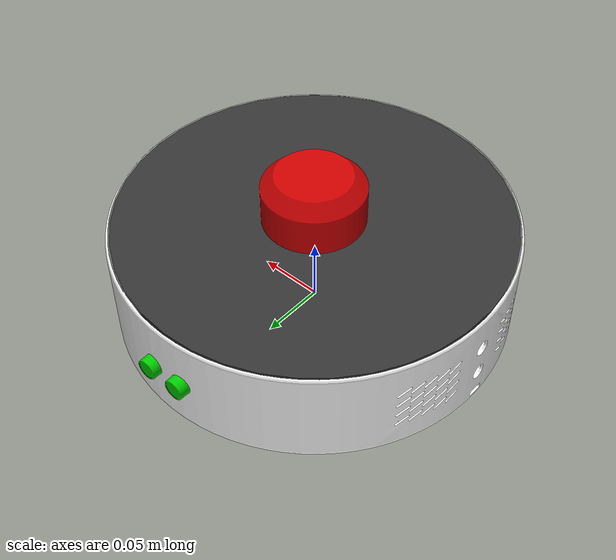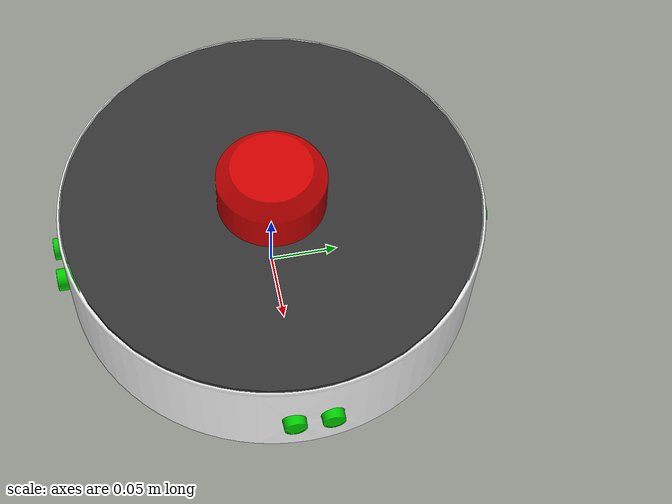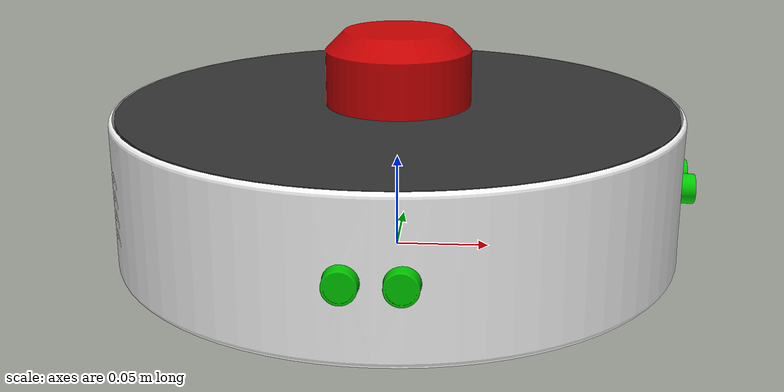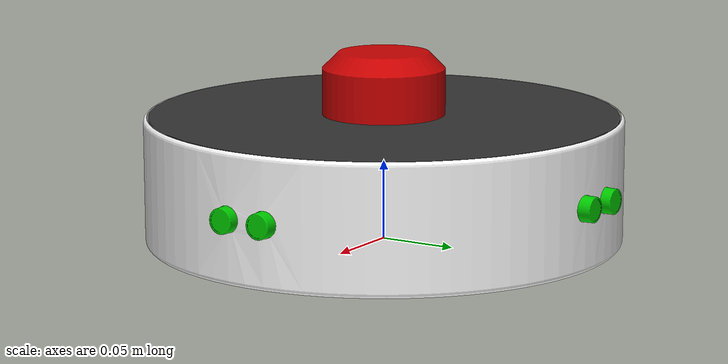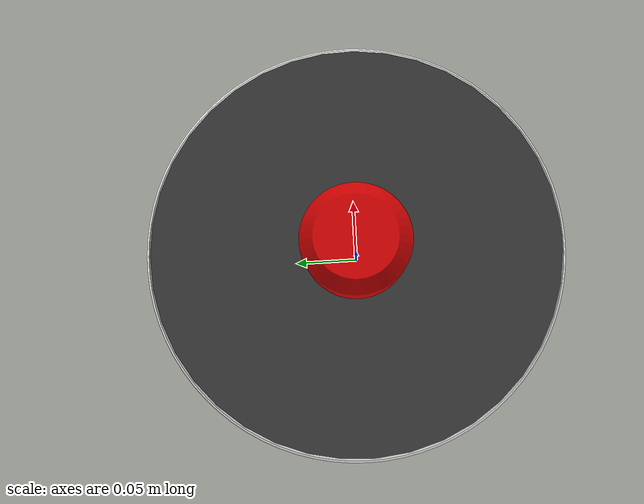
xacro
<?xml version="1.0" encoding="utf-8"?>

<robot
  name="Robot_URDF"
  xmlns:xacro="http://www.ros.org/wiki/xacro">

    <!-- Import Rviz colors -->
    <xacro:include filename="$(find Robot_URDF)/urdf/materials.xacro" />

<!-- Import all Gazebo-customization elements, including Gazebo colors -->
  <xacro:include filename="$(find Robot_URDF)/urdf/mybot.gazebo" />

 <!--dummy link-->
        <link name="base_footprint"/>
        <joint name="dummy_joint" type="fixed">
          <origin xyz="0.0 0.0 0.0" rpy="0.0 0.0 0.0"/>
          <parent link="base_footprint"/>
          <child link="base_link"/>
          <axis xyz="0.0 0.0 0.0"/>
          <limit lower="0.0" upper="0.0" effort="0.0" velocity="0.0"/>
        </joint>

  <link
    name="base_link">
    <inertial>
      <origin
        xyz="0.0017553 -2.9398E-07 0.0177"
        rpy="0 0 0" />
      <mass
        value="0.33739" />
      <inertia
        ixx="0.0028468"
        ixy="6.2586E-10"
        ixz="1.4453E-06"
        iyy="0.0028585"
        iyz="2.2404E-09"
        izz="0.0053109" />
    </inertial>
    <visual>
      <origin
        xyz="0 0 0"
        rpy="0 0 0" />
      <geometry>
        <mesh
          filename="package://Robot_URDF/meshes/base_link.STL" />
      </geometry>
      <material name="white"/>
    </visual>
    <collision>
      <origin
        xyz="0 0 0"
        rpy="0 0 0" />
      <geometry>
        <mesh
          filename="package://Robot_URDF/meshes/base_link.STL" />
      </geometry>
    </collision>
  </link>

  <link
    name="RightWheel_Link">
    <inertial>
      <origin
        xyz="-0.047215 -0.086543 0.014931"
        rpy="0 0 0" />
      <mass
        value="0.30664" />
      <inertia
        ixx="0.00012023"
        ixy="6.996E-14"
        ixz="-1.216E-13"
        iyy="0.0002214"
        iyz="-6.3898E-14"
        izz="0.00012023" />
    </inertial>
    <visual>
      <origin
        xyz="0 0 0"
        rpy="0 0 0" />
      <geometry>
        <mesh
          filename="package://Robot_URDF/meshes/RightWheel_Link.STL" />
      </geometry>
      <material name="black"/>
    </visual>
    <collision>
      <origin
        xyz="0 0 0"
        rpy="0 0 0" />
      <geometry>
        <mesh
          filename="package://Robot_URDF/meshes/RightWheel_Link.STL" />
      </geometry>
    </collision>
  </link>

  <joint
    name="RightWheel_Joint"
    type="revolute">
    <origin
      xyz="0 0 0"
      rpy="0 0 0" />
    <parent
      link="base_link" />
    <child
      link="RightWheel_Link" />
    <axis
      xyz="0 -1 0" />
    <limit
      lower="-3.1416"
      upper="3.1416"
      effort="20"
      velocity="5" />
  </joint>

  <link
    name="LeftWheel_Link">
    <inertial>
      <origin
        xyz="-0.047215 0.086449 0.014931"
        rpy="0 0 0" />
      <mass
        value="0.30664" />
      <inertia
        ixx="0.00012023"
        ixy="-6.9962E-14"
        ixz="1.216E-13"
        iyy="0.0002214"
        iyz="-6.3898E-14"
        izz="0.00012023" />
    </inertial>
    <visual>
      <origin
        xyz="0 0 0"
        rpy="0 0 0" />
      <geometry>
        <mesh
          filename="package://Robot_URDF/meshes/LeftWheel_Link.STL" />
      </geometry>
      <material name="black"/>
    </visual>
    <collision>
      <origin
        xyz="0 0 0"
        rpy="0 0 0" />
      <geometry>
        <mesh
          filename="package://Robot_URDF/meshes/LeftWheel_Link.STL" />
      </geometry>
    </collision>
  </link>

  <joint
    name="LeftWheel_Joint"
    type="revolute">
    <origin
      xyz="0 0 0"
      rpy="0 0 0" />
    <parent
      link="base_link" />
    <child
      link="LeftWheel_Link" />
    <axis
      xyz="0 1 0" />
    <limit
      lower="-3.1416"
      upper="3.1416"
      effort="20"
      velocity="5" />
  </joint>

  <link
    name="CasterWheel_Link">
    <inertial>
      <origin
        xyz="0.074896 0.00010413 -0.0057749"
        rpy="0 0 0" />
      <mass
        value="0.0066846" />
      <inertia
        ixx="4.665E-07"
        ixy="1.9714E-22"
        ixz="-3.4365E-25"
        iyy="4.665E-07"
        iyz="-7.5603E-24"
        izz="8.8561E-07" />
    </inertial>
    <visual>
      <origin
        xyz="0 0 0"
        rpy="0 0 0" />
      <geometry>
        <mesh
          filename="package://Robot_URDF/meshes/CasterWheel_Link.STL" />
      </geometry>
      <material name="blue"/>
    </visual>
    <collision>
      <origin
        xyz="0 0 0"
        rpy="0 0 0" />
      <geometry>
        <mesh
          filename="package://Robot_URDF/meshes/CasterWheel_Link.STL" />
      </geometry>
    </collision>
  </link>

  <joint
    name="CasterWheel_Joint"
    type="fixed">
    <origin
      xyz="0 0 0"
      rpy="0 0 0" />
    <parent
      link="base_link" />
    <child

      link="CasterWheel_Link" />
    <axis
      xyz="0 0 0" />
  </joint>

  <link
    name="RightUltra_Link">
    <inertial>
      <origin
        xyz="-4.2017E-06 -0.14835 0.040053"
        rpy="0 0 0" />
      <mass
        value="0.0062273" />
      <inertia
        ixx="2.3852E-07"
        ixy="1.3189E-10"
        ixz="1.9966E-10"
        iyy="1.2204E-06"
        iyz="2.0237E-09"
        izz="1.1941E-06" />
    </inertial>
    <visual>
      <origin
        xyz="0 0 0"
        rpy="0 0 0" />
      <geometry>
        <mesh
          filename="package://Robot_URDF/meshes/RightUltra_Link.STL" />
      </geometry>
      <material name="green"/>
    </visual>
    <collision>
      <origin
        xyz="0 0 0"
        rpy="0 0 0" />
      <geometry>
        <mesh
          filename="package://Robot_URDF/meshes/RightUltra_Link.STL" />
      </geometry>
    </collision>
  </link>

  <joint
    name="RightUltra_Joint"
    type="fixed">
    <origin
      xyz="0 0 0"
      rpy="0 0 0" />
    <parent
      link="base_link" />
    <child
      link="RightUltra_Link" />
    <axis
      xyz="0 0 0" />
  </joint>

  <link
    name="FrontUltra_Link">
    <inertial>
      <origin
        xyz="0.14829 -4.2017E-06 0.040053"
        rpy="0 0 0" />
      <mass
        value="0.0062273" />
      <inertia
        ixx="1.2204E-06"
        ixy="-1.3189E-10"
        ixz="-2.0237E-09"
        iyy="2.3852E-07"
        iyz="1.9966E-10"
        izz="1.1941E-06" />
    </inertial>
    <visual>
      <origin
        xyz="0 0 0"
        rpy="0 0 0" />
      <geometry>
        <mesh
          filename="package://Robot_URDF/meshes/FrontUltra_Link.STL" />
      </geometry>
      <material name="green"/>
    </visual>
    <collision>
      <origin
        xyz="0 0 0"
        rpy="0 0 0" />
      <geometry>
        <mesh
          filename="package://Robot_URDF/meshes/FrontUltra_Link.STL" />
      </geometry>
    </collision>
  </link>

  <joint
    name="FrontUltra_Joint"
    type="fixed">
    <origin
      xyz="0 0 0"
      rpy="0 0 0" />
    <parent
      link="base_link" />
    <child
      link="FrontUltra_Link" />
    <axis
      xyz="0 0 0" />
  </joint>
  <link
    name="LeftUltra_Link">
    <inertial>
      <origin
        xyz="4.2017E-06 0.14863 0.040053"
        rpy="0 0 0" />
      <mass
        value="0.0062273" />
      <inertia
        ixx="2.3852E-07"
        ixy="1.3189E-10"
        ixz="-1.9966E-10"
        iyy="1.2204E-06"
        iyz="-2.0237E-09"
        izz="1.1941E-06" />
    </inertial>
    <visual>
      <origin
        xyz="0 0 0"
        rpy="0 0 0" />
      <geometry>
        <mesh
          filename="package://Robot_URDF/meshes/LeftUltra_Link.STL" />
      </geometry>
      <material name="green"/>
    </visual>
    <collision>
      <origin
        xyz="0 0 0"
        rpy="0 0 0" />
      <geometry>
        <mesh
          filename="package://Robot_URDF/meshes/LeftUltra_Link.STL" />
      </geometry>
    </collision>
  </link>

  <joint
    name="LeftUltra_Joint"
    type="fixed">
    <origin
      xyz="0 0 0"
      rpy="0 0 0" />
    <parent
      link="base_link" />
    <child
      link="LeftUltra_Link" />
    <axis
      xyz="0 0 0" />
  </joint>

  <link
    name="Cover_Link">
    <inertial>
      <origin
        xyz="0.0017553 -2.9398E-07 0.0177"
        rpy="0 0 0" />
      <mass
        value="0.33739" />
      <inertia
        ixx="0.0028468"
        ixy="6.2586E-10"
        ixz="1.4453E-06"
        iyy="0.0028585"
        iyz="2.2404E-09"
        izz="0.0053109" />
    </inertial>
    <visual>
      <origin
        xyz="0 0 0"
        rpy="0 0 0" />
      <geometry>
        <mesh
          filename="package://Robot_URDF/meshes/Cover_Link.STL" />
      </geometry>
      <material name="grey"/>
    </visual>
    <collision>
      <origin
        xyz="0 0 0"
        rpy="0 0 0" />
      <geometry>
        <mesh
          filename="package://Robot_URDF/meshes/Cover_Link.STL" />
      </geometry>
    </collision>
  </link>

  <joint
    name="Cover_Joint"
         type="fixed">
    <origin
      xyz="0 0 0"
      rpy="0 0 0" />
    <parent
      link="base_link" />
    <child
      link="Cover_Link" />
  </joint>

  <link
    name="Lidar_Link">
    <inertial>
      <origin
        xyz="0.00058826 0.00017875 0.098458"
        rpy="0 0 0" />
      <mass
        value="0.17056" />
      <inertia
        ixx="8.0287E-05"
        ixy="9.209E-38"
        ixz="-1.7995E-37"
        iyy="8.0287E-05"
        iyz="3.0477E-23"
        izz="0.00012075" />
    </inertial>
    <visual>
      <origin
        xyz="0 0 -0.1"
        rpy="0 0 0" />
      <geometry>
        <mesh
          filename="package://Robot_URDF/meshes/Lidar_Link.STL" />
      </geometry>
      <material name="red"/>
    </visual>
    <collision>
      <origin
        xyz="0 0 -0.1"
        rpy="0 0 0" />
      <geometry>
        <mesh
          filename="package://Robot_URDF/meshes/Lidar_Link.STL" />
      </geometry>
    </collision>
  </link>

  <joint
    name="Lidar_joint"
    type="fixed">
    <origin
      xyz="0 0 0.1"
      rpy="0 0 0" />
    <parent
      link="base_link" />
    <child
      link="Lidar_Link" />
    <axis
      xyz="0 0 0" />
  </joint>

</robot>

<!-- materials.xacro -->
<robot>

  <material name="black">
    <color rgba="0.0 0.0 0.0 1.0"/>
  </material>

  <material name="blue">
    <color rgba="0.0 0.0 0.8 1.0"/>
  </material>

  <material name="green">
    <color rgba="0.0 0.8 0.0 1.0"/>
  </material>

  <material name="grey">
    <color rgba="0.2 0.2 0.2 1.0"/>
  </material>

  <material name="orange">
    <color rgba="${255/255} ${108/255} ${10/255} 1.0"/>
  </material>

  <material name="brown">
    <color rgba="${222/255} ${207/255} ${195/255} 1.0"/>
  </material>

  <material name="red">
    <color rgba="0.8 0.0 0.0 1.0"/>
  </material>

  <material name="white">
    <color rgba="1.0 1.0 1.0 1.0"/>
  </material>

</robot>
